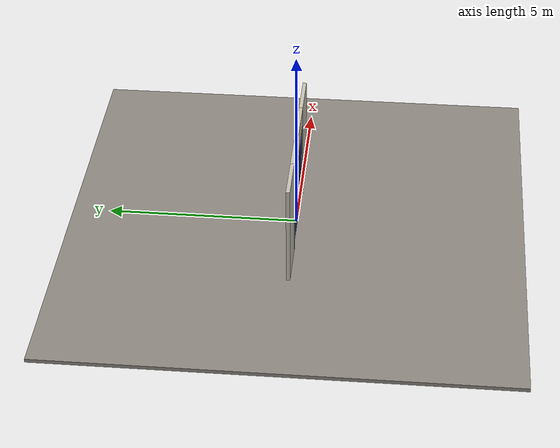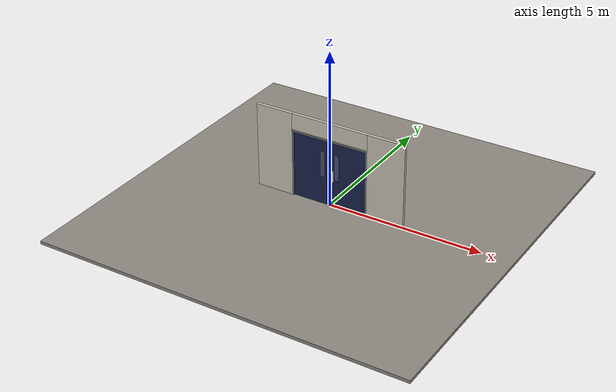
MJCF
<?xml version="1.0" ?>
<mujoco model="db0047_swing_double_minimal">
  <compiler angle="radian" meshdir="../../hardware" texturedir="../../textures" autolimits="true" inertiafromgeom="false"/>
  <option timestep="0.002" integrator="implicitfast" cone="elliptic" impratio="10" noslip_iterations="3">
    <flag multiccd="enable"/>
  </option>
  <size memory="16M"/>
  <default>
    <geom condim="4" solref="0.005 1" solimp="0.95 0.99 0.001"/>
    <joint solreflimit="0.005 1" solimplimit="0.95 0.99 0.001"/>
    <tendon solreflimit="0.005 1"/>
    <equality solref="0.002 1"/>
  </default>
  <visual>
    <headlight ambient="0.4 0.4 0.4" diffuse="0.7 0.7 0.7" specular="0.2 0.2 0.2"/>
    <quality shadowsize="4096"/>
    <map znear="0.01" zfar="60"/>
  </visual>
  <asset>
    <material name="mat_floor" rgba="0.55 0.53 0.5 1" specular="0.2" shininess="0.15" reflectance="0"/>
    <material name="mat_wall" rgba="0.78 0.76 0.7 1" specular="0.2" shininess="0.1" reflectance="0"/>
    <material name="mat_leaf_a" rgba="0.09 0.13 0.28 1" specular="0.2" shininess="0.51" reflectance="0"/>
    <material name="mat_glass" rgba="0.85 0.92 0.95 0.25" specular="0.2" shininess="0.95" reflectance="0.1"/>
    <material name="mat_hinge" rgba="0.65 0.66 0.68 1" specular="0.74" shininess="0.5" reflectance="0.36"/>
    <material name="mat_op_stainless" rgba="0.75 0.76 0.77 1" specular="0.8" shininess="0.65" reflectance="0.4"/>
    <material name="mat_closer" rgba="0.22 0.17 0.13 1" specular="0.8" shininess="0.6" reflectance="0.4"/>
    <material name="mat_kick" rgba="0.75 0.76 0.77 1" specular="0.8" shininess="0.65" reflectance="0.4"/>
    <material name="mat_bumper" rgba="0.92 0.92 0.9 1" specular="0.2" shininess="0.6" reflectance="0"/>
    <material name="mat_leaf_b" rgba="0.09 0.13 0.28 1" specular="0.2" shininess="0.51" reflectance="0"/>
    <material name="mat_frame" rgba="0.45 0.48 0.52 1" specular="0.32" shininess="0.6" reflectance="0.08"/>
    <texture name="skybox" type="skybox" builtin="gradient" rgb1="0.6 0.7 0.85" rgb2="0.9 0.92 0.95" width="256" height="256"/>
  </asset>
  <worldbody>
    <light name="sun" pos="1.5 -2.5 4" dir="-0.3 0.5 -0.8" directional="true" diffuse="0.8 0.8 0.8" specular="0.3 0.3 0.3" castshadow="true"/>
    <light name="fill" pos="-1.5 2.5 3" dir="0.3 -0.5 -0.7" directional="true" diffuse="0.35 0.35 0.4" castshadow="false"/>
    <camera name="robot_view" pos="0 -2.919063 1.890837" xyaxes="1 0 0 0 0.26963 0.962964" fovy="52"/>
    <camera name="far_view" pos="0 2.919063 1.890837" xyaxes="-1 0 0 0 -0.26963 0.962964" fovy="52"/>
    <camera name="iso" pos="-2.218488 -2.452013 2.357888" xyaxes="0.741536 -0.670913 0 0.242917 0.268487 0.932151" fovy="46"/>
    <camera name="detail_handle" pos="0.2845 -0.8 1.296" xyaxes="0.97561 0.219512 0 -0.070934 0.315262 0.94635" fovy="38"/>
    <geom name="floor" type="box" size="6 6 0.05" pos="0 0 -0.05" material="mat_floor" group="0" contype="1" conaffinity="1" friction="0.8 0.005 0.0001" density="2400"/>
    <geom name="wall_left" type="box" size="0.61325 0.05 1.3735" pos="-1.88675 0 1.3735" material="mat_wall" group="0" contype="1" conaffinity="1" friction="0.6 0.005 0.0001" density="800"/>
    <geom name="wall_right" type="box" size="0.61325 0.05 1.3735" pos="1.88675 0 1.3735" material="mat_wall" group="0" contype="1" conaffinity="1" friction="0.6 0.005 0.0001" density="800"/>
    <geom name="wall_header" type="box" size="1.2735 0.05 0.26" pos="0 0 2.487" material="mat_wall" group="0" contype="1" conaffinity="1" friction="0.6 0.005 0.0001" density="800"/>
    <geom name="jamb_l" type="box" size="0.025 0.05 1.0735" pos="-1.2485 0 1.0735" material="mat_frame" group="0" contype="1" conaffinity="1" friction="0.6 0.005 0.0001" density="300"/>
    <geom name="jamb_r" type="box" size="0.025 0.05 1.0735" pos="1.2485 0 1.0735" material="mat_frame" group="0" contype="1" conaffinity="1" friction="0.6 0.005 0.0001" density="300"/>
    <geom name="jamb_head" type="box" size="1.2735 0.05 0.025" pos="0 0 2.172" material="mat_frame" group="0" contype="1" conaffinity="1" friction="0.6 0.005 0.0001" density="300"/>
    <geom name="head_stud" type="box" size="1.2735 0.05 0.015" pos="0 0 2.212" material="mat_wall" group="0" contype="1" conaffinity="1" friction="0.6 0.005 0.0001" density="500"/>
    <site name="approach_point" pos="0 -1.5 0" quat="1 0 0 0" size="0.05" rgba="0.2 0.9 0.2 0.5" group="4"/>
    <site name="goal_point" pos="0 1.5 0" quat="1 0 0 0" size="0.05" rgba="0.2 0.9 0.2 0.5" group="4"/>
    <site name="door_plane_center" pos="0 0 1.0735" quat="1 0 0 0" size="0.02" rgba="0.2 0.9 0.2 0.5" group="4"/>
    <site name="approach_point_2" pos="0 -1.5 0" quat="1 0 0 0" size="0.05" rgba="0.2 0.9 0.2 0.5" group="4"/>
    <site name="goal_point_2" pos="0 1.5 0" quat="1 0 0 0" size="0.05" rgba="0.2 0.9 0.2 0.5" group="4"/>
    <site name="door_plane_center_2" pos="0 0 1.0735" quat="1 0 0 0" size="0.02" rgba="0.2 0.9 0.2 0.5" group="4"/>
    <site name="approach_point_3" pos="0 -1.5 0" quat="1 0 0 0" size="0.05" rgba="0.2 0.9 0.2 0.5" group="4"/>
    <site name="goal_point_3" pos="0 1.5 0" quat="1 0 0 0" size="0.05" rgba="0.2 0.9 0.2 0.5" group="4"/>
    <site name="door_plane_center_3" pos="0 0 1.0735" quat="1 0 0 0" size="0.02" rgba="0.2 0.9 0.2 0.5" group="4"/>
    <body name="leaf_a" pos="-1.2235 0 0">
      <inertial pos="0.615623 0.00014 1.07565" mass="87.762029" quat="-0.49997 0.499677 0.500311 0.500041" diaginertia="10.952002461 33.122847401 44.046155797"/>
      <joint name="leaf_a_hinge" type="hinge" axis="0 0 -1" pos="0.003 -0.029 0" limited="true" range="0 1.570796" damping="12.850995" frictionloss="3.176884" stiffness="19.0031" springref="-2.141756" armature="0.02"/>
      <geom name="leaf_a_slab" type="box" size="0.6095 0.022 1.067" pos="0.6125 0 1.076" material="mat_leaf_a" group="0" contype="1" conaffinity="1" friction="0.35 0.005 0.0001" density="1"/>
      <geom name="leaf_a_glass_0" type="box" size="0.075 0.0228 0.4268" pos="0.98291 0 1.33208" material="mat_glass" group="1" contype="0" conaffinity="0" density="1"/>
      <geom name="leaf_a_push_plate_p" type="box" size="0.05 0.0008 0.2" pos="1.117 0.0228 1.016" material="mat_op_stainless" group="1" contype="0" conaffinity="0" density="7900"/>
      <site name="leaf_a_push_plate_push_p" pos="1.117 0.022 1.016" quat="1 0 0 0" size="0.012" rgba="0.2 0.9 0.2 0.5" group="4"/>
      <site name="leaf_a_edge_mid" pos="1.222 0 1.067" quat="1 0 0 0" size="0.02" rgba="0.2 0.9 0.2 0.5" group="4"/>
    </body>
    <body name="leaf_b" pos="1.2235 0 0">
      <inertial pos="-0.615623 -0.00014 1.07565" mass="87.762029" quat="0.500311 -0.500041 -0.49997 -0.499677" diaginertia="10.952002461 33.122847401 44.046155797"/>
      <joint name="leaf_b_hinge" type="hinge" axis="0 0 -1" pos="-0.003 0.029 0" limited="true" range="0 1.570796" damping="12.850995" frictionloss="3.176884" stiffness="19.0031" springref="-2.141756" armature="0.02"/>
      <geom name="leaf_b_slab" type="box" size="0.6095 0.022 1.067" pos="-0.6125 0 1.076" material="mat_leaf_b" group="0" contype="1" conaffinity="1" friction="0.35 0.005 0.0001" density="1"/>
      <geom name="leaf_b_glass_0" type="box" size="0.075 0.0228 0.4268" pos="-0.98291 0 1.33208" material="mat_glass" group="1" contype="0" conaffinity="0" density="1"/>
      <geom name="leaf_b_push_plate_n" type="box" size="0.05 0.0008 0.2" pos="-1.117 -0.0228 1.016" material="mat_op_stainless" group="1" contype="0" conaffinity="0" density="7900"/>
      <site name="leaf_b_push_plate_push_n" pos="-1.117 -0.022 1.016" quat="1 0 0 0" size="0.012" rgba="0.2 0.9 0.2 0.5" group="4"/>
      <site name="leaf_b_edge_mid" pos="-1.222 0 1.067" quat="1 0 0 0" size="0.02" rgba="0.2 0.9 0.2 0.5" group="4"/>
    </body>
  </worldbody>
  <sensor>
    <jointpos name="leaf_a_hinge_pos" joint="leaf_a_hinge"/>
    <jointvel name="leaf_a_hinge_vel" joint="leaf_a_hinge"/>
    <jointpos name="leaf_b_hinge_pos" joint="leaf_b_hinge"/>
    <jointvel name="leaf_b_hinge_vel" joint="leaf_b_hinge"/>
  </sensor>
</mujoco>
